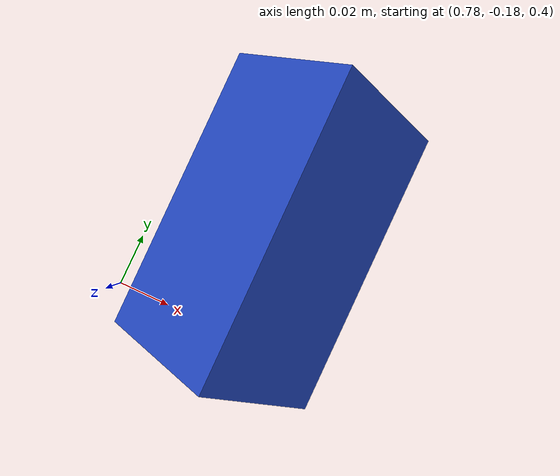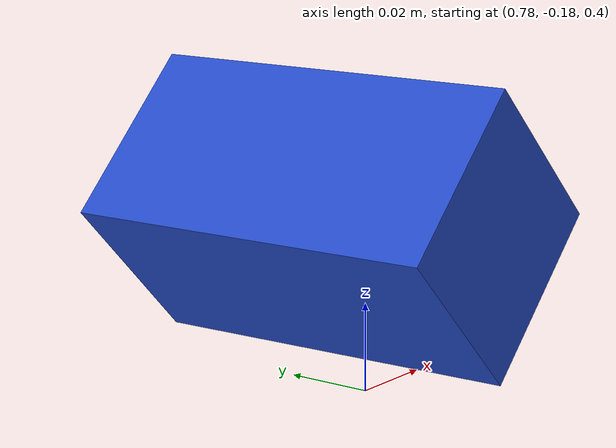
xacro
<?xml version="1.0"?>
<robot name="kit_gripper" xmlns:xacro="http://www.ros.org/wiki/xacro">

<!-- ============================ define world ========================== -->
    <link name="world"/>

<!-- ============================ define KIT Base ========================== -->

    <joint name="kit_base_joint" type="fixed">
        <origin
          xyz = "0.58077636  0.15348063  0.140803"
          rpy = "${pi/2} 0 -${pi/2}"
          />

        <parent link="world" />
        <child link="KITBase" />
    </joint>

    <link name="KITBase">
    </link>

<!-- ============================ define Stereo Camera ========================== -->
    <joint name="stereo_camera_image_joint" type="fixed">
        <origin xyz = "0.29054669189453125 0.2855022888183594 -0.2433302764892578"
        rpy = "0.00902095390201 -0.773211425841 1.57543903385"/>

        <parent link="KITBase" />
        <child link="stereo_camera_image" />
    </joint>

    <link name="stereo_camera_image">
    </link>

    <joint name="stereo_camera_joint" type="fixed">
      <origin
          xyz = "0 0 0"
          rpy = "0 0 ${pi/2}"
          />

      <parent link="stereo_camera_image" />
      <child link="stereo_camera" />
    </joint>

    <link name="stereo_camera">

        <visual>
          <origin xyz="0 0 0" rpy="0 0 0" />
          <geometry>
            <box size="0.10 0.05 0.05"/>
          </geometry>
          <material name="blue" />
        </visual>
    </link>

<!-- ============================ define Basler Camera ========================== -->
    <joint name="basler_camera_image_joint" type="fixed">
        <origin
            xyz = "0.28342413330078126 0.7854694213867187 -0.0249450798034668"
            rpy = "-1.5512922749068763 -0.03081931588679528 3.1241579540550597"
            />

        <parent link="KITBase" />
        <child link="basler_camera_image" />
    </joint>

    <link name="basler_camera_image">
    </link>

<!-- ============================ define KIT Pattern ========================== -->

    <joint name="kit_pattern_joint" type="fixed">
        <origin
            xyz = "0.325 0.0065 0.0505"
            rpy = "-${pi/2} ${pi/2} 0"
            />

        <parent link="KITBase" />
        <child link="KITPattern2" />
    </joint>

    <link name="KITPattern2">
    </link>

    <joint name="kit_pattern_45_joint" type="fixed">
        <origin
            xyz = "0.01938 0  0.033805"
            rpy = "0 ${pi/4} 0"
            />

        <parent link="KITPattern2" />
        <child link="table_pattern_45" />
    </joint>

    <link name="table_pattern_45">
    </link>

</robot>
